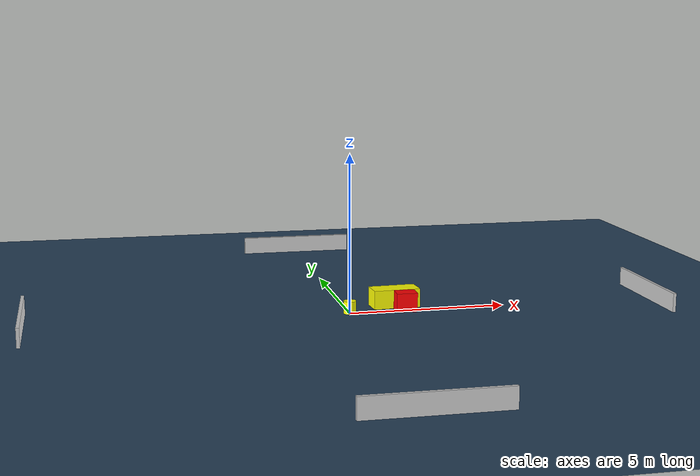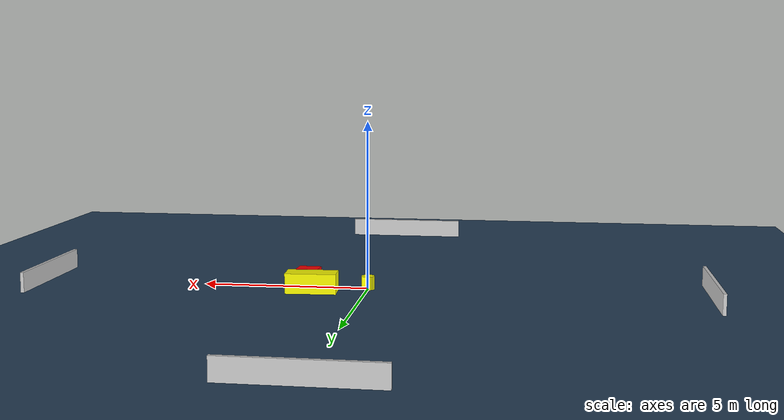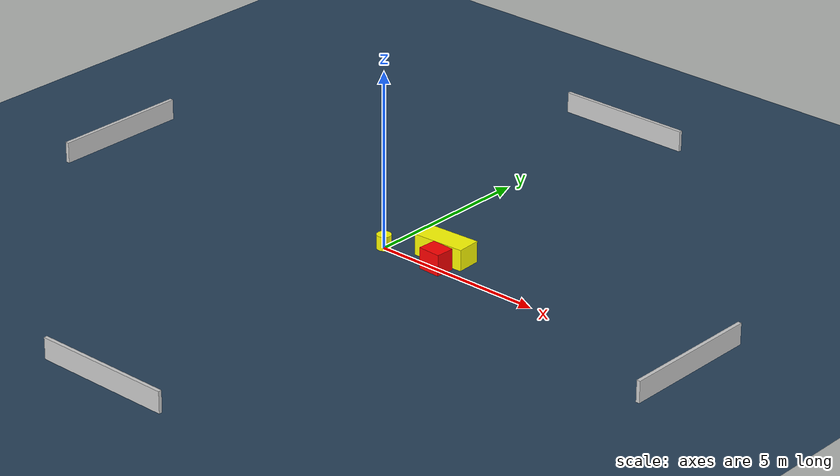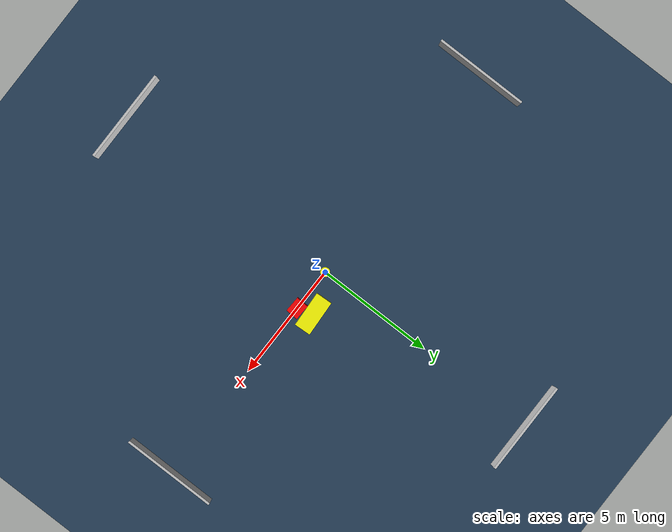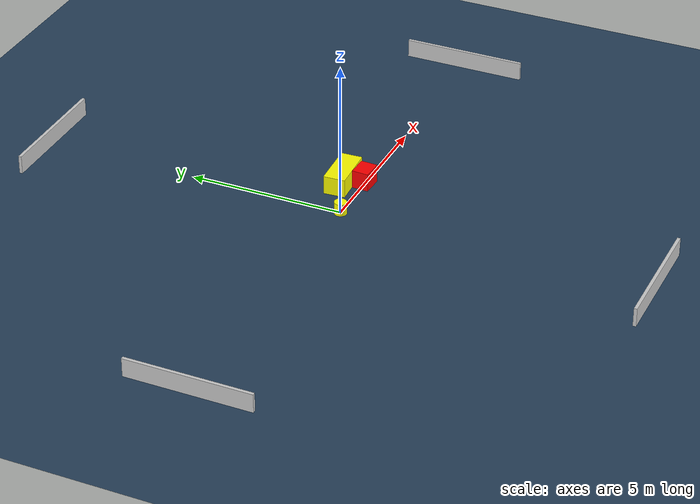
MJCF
<?xml version="1.0" ?>
<mujoco model="generated_environment">
  <option timestep="0.01" integrator="RK4" cone="elliptic"/>
  <default>
    <geom density="1"/>
  </default>
  <asset>
    <texture builtin="gradient" height="3072" name="skybox" rgb1="0.3 0.5 0.7" rgb2="0 0 0" type="skybox" width="512"/>
    <texture builtin="checker" height="300" name="groundplane" rgb1="0.2 0.3 0.4" rgb2="0.1 0.2 0.3" type="2d" width="300"/>
    <material name="groundplane" reflectance="0.2" texrepeat="5 5" texture="groundplane"/>
  </asset>
  <worldbody>
    <light dir="0 0 -1" directional="true" pos="0 0 1.5"/>
    <geom condim="3" friction="0.5 0.005 0.001" material="groundplane" name="floor" pos="0 0 0" size="0 0 0.05" type="plane"/>
    <body name="walls">
      <geom name="wall_1" condim="4" pos="-10.0 0.0 0.3" rgba="0.800000011920929 0.800000011920929 0.800000011920929 1.0" size="0.05 2.0 0.3" type="box"/>
      <geom name="wall_2" condim="4" pos="10.0 0.0 0.3" rgba="0.800000011920929 0.800000011920929 0.800000011920929 1.0" size="0.05 2.0 0.3" type="box"/>
      <geom name="wall_3" condim="4" pos="0.0 -10.0 0.3" rgba="0.800000011920929 0.800000011920929 0.800000011920929 1.0" size="2.0 0.05 0.3" type="box"/>
      <geom name="wall_4" condim="4" pos="0.0 10.0 0.3" rgba="0.800000011920929 0.800000011920929 0.800000011920929 1.0" size="2.0 0.05 0.3" type="box"/>
    </body>
    <body name="robot">
      <joint name="joint_x" type="slide" pos="0 0 0" axis="1 0 0"/>
      <joint name="joint_y" type="slide" pos="0 0 0" axis="0 1 0"/>
      <geom name="robot" type="cylinder" pos="0.0 0.0 0.2" size="0.2 0.2 0.0" mass="5.0" friction="1.0 0.005 0.0001" condim="4" rgba="1.0 1.0 0.0 1.0"/>
    </body>
    <body name="obstacle_1_movable">
      <geom name="obstacle_1_movable" condim="4" pos="1.5880781834407016 0.6392022691600147 0.3" euler="0 0 93.035517236124" friction="0.0 0.005 0.001" rgba="1.0 1.0 0.0 1.0" size="0.34711490428709313 0.7535239084282632 0.3" type="box" mass="0.1"/>
      <joint type="free"/>
    </body>
    <body name="obstacle_2_static">
      <geom name="obstacle_2_static" condim="4" pos="1.8045165734417 0.003242616971754624 0.3" euler="0 0 267.3349390247378" friction="0.0 0.005 0.001" rgba="1.0 0.0 0.0 1.0" size="0.2666425380387058 0.3296428490602169 0.3" type="box"/>
    </body>
  </worldbody>
  <actuator>
    <motor name="actuator_x" joint="joint_x" gear="1" ctrlrange="-1 1"/>
    <motor name="actuator_y" joint="joint_y" gear="1" ctrlrange="-1 1"/>
  </actuator>
</mujoco>
